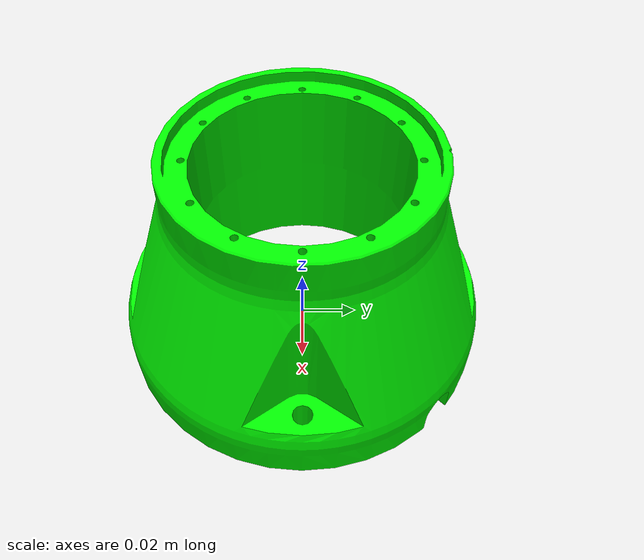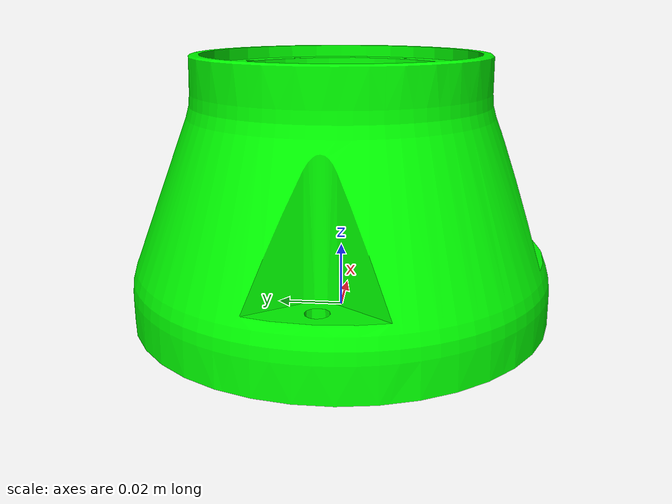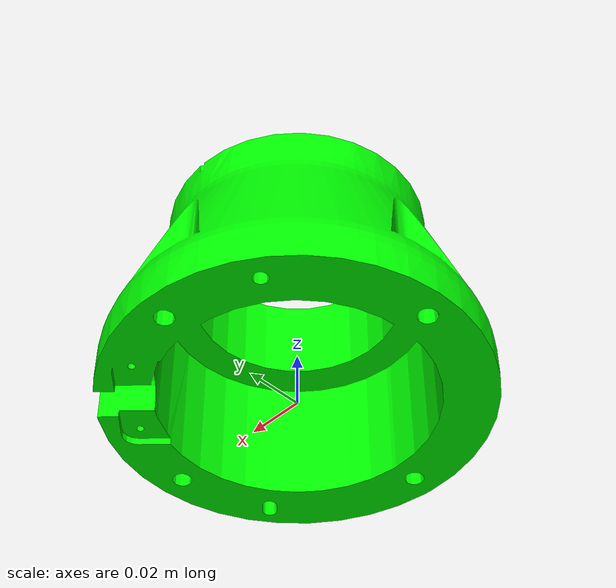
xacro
<?xml version="1.0"?>
<robot xmlns:xacro="http://www.ros.org/wiki/xacro" name="test_stl_robot">

  <link name="base_link">
    <inertial>
      <origin xyz="0 0 0" rpy="0 0 0"/>
      <mass value="1.0"/>
      <inertia ixx="0.01" iyy="0.01" izz="0.01" ixy="0" ixz="0" iyz="0"/>
    </inertial>

    <!-- Visual using STL -->
    <visual>
      <origin xyz="0 0 0" rpy="0 0 0"/>
      <geometry>
        <mesh filename="package://fairino_description/meshes/fairino3_v6/base_link.dae" scale="1 1 1"/>
      </geometry>
      <material name="green">
        <color rgba="0 1 0 1"/>
      </material>
    </visual>

    <!-- Collision using STL -->
    <collision>
      <origin xyz="0 0 0" rpy="0 0 0"/>
      <geometry>
        <mesh filename="package://fairino_description/meshes/fairino3_v6/base_link.dae" scale="1 1 1"/>
      </geometry>
    </collision>
  </link>

</robot>
